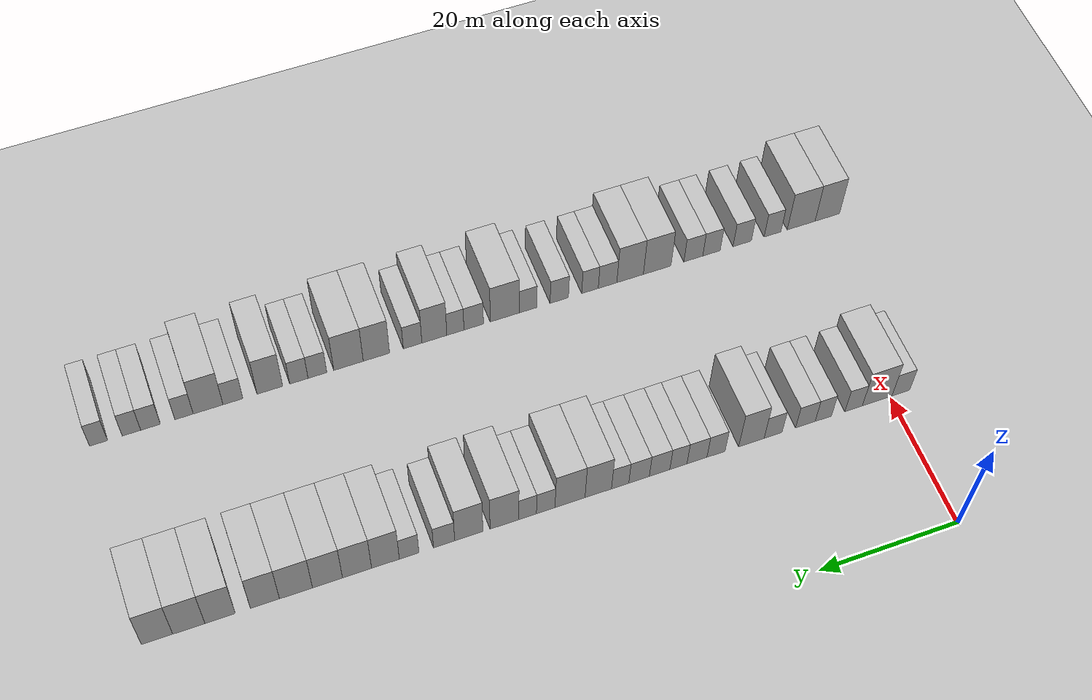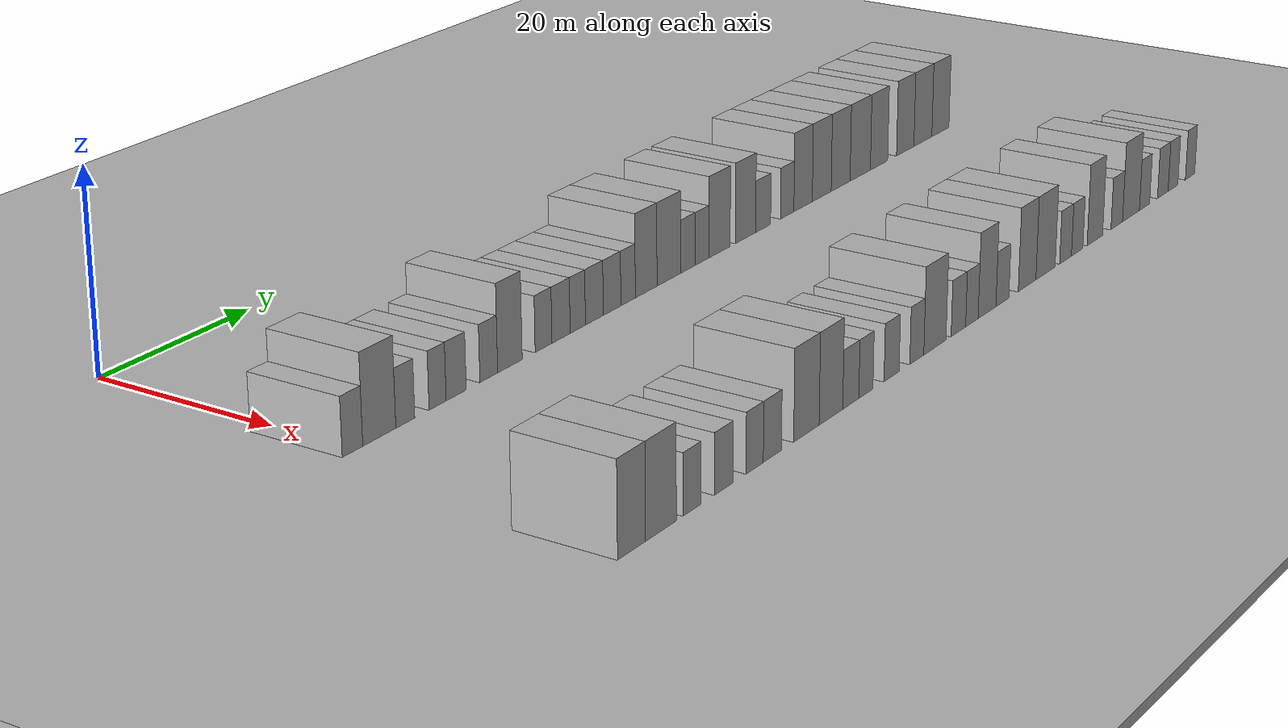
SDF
<sdf version="1.6">
 <world name="default">
  <include><name>ground_plane_1</name><uri>model://HANNAS_ground_plane</uri></include>
  <include>
   <name>ground_plane_2</name>
   <uri>model://HANNAS_ground_plane</uri>
   <pose>100 0 0  0 0 0</pose>
  </include>
  <model name="building_58">
   <static>1</static>
   <pose>25.0000 -1.4398 0 0.000000 0.000000 0.000000</pose>
   <link name="link">
    <pose>0 0 3.00 0 0 0</pose>
    <collision name="collision"><geometry><box><size>10.0000 2.7014 6.0000</size></box></geometry></collision>
    <visual name="visual">
     <cast_shadows>0</cast_shadows>
     <geometry><box><size>10.0000 2.7014 6.0000</size></box></geometry>
     <material>
      <script>
       <uri>model://HANNAS_wall/materials/scripts</uri>
       <uri>model://HANNAS_wall/materials/textures</uri>
       <name>vrc/HANNAS_wall</name>
      </script>
     </material>
    </visual>
   </link>
  </model>
  <model name="building_59">
   <static>1</static>
   <pose>25.0000 2.1377 0 0.000000 0.000000 0.000000</pose>
   <link name="link">
    <pose>0 0 4.50 0 0 0</pose>
    <collision name="collision"><geometry><box><size>10.0000 4.4536 9.0000</size></box></geometry></collision>
    <visual name="visual">
     <cast_shadows>0</cast_shadows>
     <geometry><box><size>10.0000 4.4536 9.0000</size></box></geometry>
     <material>
      <script>
       <uri>model://HANNAS_wall/materials/scripts</uri>
       <uri>model://HANNAS_wall/materials/textures</uri>
       <name>vrc/HANNAS_wall</name>
      </script>
     </material>
    </visual>
   </link>
  </model>
  <model name="building_60">
   <static>1</static>
   <pose>25.0000 5.6719 0 0.000000 0.000000 0.000000</pose>
   <link name="link">
    <pose>0 0 3.00 0 0 0</pose>
    <collision name="collision"><geometry><box><size>10.0000 2.6147 6.0000</size></box></geometry></collision>
    <visual name="visual">
     <cast_shadows>0</cast_shadows>
     <geometry><box><size>10.0000 2.6147 6.0000</size></box></geometry>
     <material>
      <script>
       <uri>model://HANNAS_wall/materials/scripts</uri>
       <uri>model://HANNAS_wall/materials/textures</uri>
       <name>vrc/HANNAS_wall</name>
      </script>
     </material>
    </visual>
   </link>
  </model>
  <model name="building_61">
   <static>1</static>
   <pose>25.0000 10.1976 0 0.000000 0.000000 0.000000</pose>
   <link name="link">
    <pose>0 0 3.00 0 0 0</pose>
    <collision name="collision"><geometry><box><size>10.0000 2.4369 6.0000</size></box></geometry></collision>
    <visual name="visual">
     <cast_shadows>0</cast_shadows>
     <geometry><box><size>10.0000 2.4369 6.0000</size></box></geometry>
     <material>
      <script>
       <uri>model://HANNAS_wall/materials/scripts</uri>
       <uri>model://HANNAS_wall/materials/textures</uri>
       <name>vrc/HANNAS_wall</name>
      </script>
     </material>
    </visual>
   </link>
  </model>
  <model name="building_62">
   <static>1</static>
   <pose>25.0000 12.8672 0 0.000000 0.000000 0.000000</pose>
   <link name="link">
    <pose>0 0 3.00 0 0 0</pose>
    <collision name="collision"><geometry><box><size>10.0000 2.9022 6.0000</size></box></geometry></collision>
    <visual name="visual">
     <cast_shadows>0</cast_shadows>
     <geometry><box><size>10.0000 2.9022 6.0000</size></box></geometry>
     <material>
      <script>
       <uri>model://HANNAS_wall/materials/scripts</uri>
       <uri>model://HANNAS_wall/materials/textures</uri>
       <name>vrc/HANNAS_wall</name>
      </script>
     </material>
    </visual>
   </link>
  </model>
  <model name="building_63">
   <static>1</static>
   <pose>25.0000 17.6423 0 0.000000 0.000000 0.000000</pose>
   <link name="link">
    <pose>0 0 3.00 0 0 0</pose>
    <collision name="collision"><geometry><box><size>10.0000 2.6480 6.0000</size></box></geometry></collision>
    <visual name="visual">
     <cast_shadows>0</cast_shadows>
     <geometry><box><size>10.0000 2.6480 6.0000</size></box></geometry>
     <material>
      <script>
       <uri>model://HANNAS_wall/materials/scripts</uri>
       <uri>model://HANNAS_wall/materials/textures</uri>
       <name>vrc/HANNAS_wall</name>
      </script>
     </material>
    </visual>
   </link>
  </model>
  <model name="building_64">
   <static>1</static>
   <pose>25.0000 20.8289 0 0.000000 0.000000 0.000000</pose>
   <link name="link">
    <pose>0 0 4.50 0 0 0</pose>
    <collision name="collision"><geometry><box><size>10.0000 3.7254 9.0000</size></box></geometry></collision>
    <visual name="visual">
     <cast_shadows>0</cast_shadows>
     <geometry><box><size>10.0000 3.7254 9.0000</size></box></geometry>
     <material>
      <script>
       <uri>model://HANNAS_wall/materials/scripts</uri>
       <uri>model://HANNAS_wall/materials/textures</uri>
       <name>vrc/HANNAS_wall</name>
      </script>
     </material>
    </visual>
   </link>
  </model>
  <model name="building_65">
   <static>1</static>
   <pose>25.0000 26.0097 0 0.000000 0.000000 0.000000</pose>
   <link name="link">
    <pose>0 0 3.00 0 0 0</pose>
    <collision name="collision"><geometry><box><size>10.0000 2.6362 6.0000</size></box></geometry></collision>
    <visual name="visual">
     <cast_shadows>0</cast_shadows>
     <geometry><box><size>10.0000 2.6362 6.0000</size></box></geometry>
     <material>
      <script>
       <uri>model://HANNAS_wall/materials/scripts</uri>
       <uri>model://HANNAS_wall/materials/textures</uri>
       <name>vrc/HANNAS_wall</name>
      </script>
     </material>
    </visual>
   </link>
  </model>
  <model name="building_66">
   <static>1</static>
   <pose>25.0000 28.7785 0 0.000000 0.000000 0.000000</pose>
   <link name="link">
    <pose>0 0 3.00 0 0 0</pose>
    <collision name="collision"><geometry><box><size>10.0000 2.9012 6.0000</size></box></geometry></collision>
    <visual name="visual">
     <cast_shadows>0</cast_shadows>
     <geometry><box><size>10.0000 2.9012 6.0000</size></box></geometry>
     <material>
      <script>
       <uri>model://HANNAS_wall/materials/scripts</uri>
       <uri>model://HANNAS_wall/materials/textures</uri>
       <name>vrc/HANNAS_wall</name>
      </script>
     </material>
    </visual>
   </link>
  </model>
  <model name="building_67">
   <static>1</static>
   <pose>25.0000 31.4660 0 0.000000 0.000000 0.000000</pose>
   <link name="link">
    <pose>0 0 3.00 0 0 0</pose>
    <collision name="collision"><geometry><box><size>10.0000 2.4739 6.0000</size></box></geometry></collision>
    <visual name="visual">
     <cast_shadows>0</cast_shadows>
     <geometry><box><size>10.0000 2.4739 6.0000</size></box></geometry>
     <material>
      <script>
       <uri>model://HANNAS_wall/materials/scripts</uri>
       <uri>model://HANNAS_wall/materials/textures</uri>
       <name>vrc/HANNAS_wall</name>
      </script>
     </material>
    </visual>
   </link>
  </model>
  <model name="building_68">
   <static>1</static>
   <pose>25.0000 34.1772 0 0.000000 0.000000 0.000000</pose>
   <link name="link">
    <pose>0 0 3.00 0 0 0</pose>
    <collision name="collision"><geometry><box><size>10.0000 2.9485 6.0000</size></box></geometry></collision>
    <visual name="visual">
     <cast_shadows>0</cast_shadows>
     <geometry><box><size>10.0000 2.9485 6.0000</size></box></geometry>
     <material>
      <script>
       <uri>model://HANNAS_wall/materials/scripts</uri>
       <uri>model://HANNAS_wall/materials/textures</uri>
       <name>vrc/HANNAS_wall</name>
      </script>
     </material>
    </visual>
   </link>
  </model>
  <model name="building_69">
   <static>1</static>
   <pose>25.0000 37.1242 0 0.000000 0.000000 0.000000</pose>
   <link name="link">
    <pose>0 0 3.00 0 0 0</pose>
    <collision name="collision"><geometry><box><size>10.0000 2.9454 6.0000</size></box></geometry></collision>
    <visual name="visual">
     <cast_shadows>0</cast_shadows>
     <geometry><box><size>10.0000 2.9454 6.0000</size></box></geometry>
     <material>
      <script>
       <uri>model://HANNAS_wall/materials/scripts</uri>
       <uri>model://HANNAS_wall/materials/textures</uri>
       <name>vrc/HANNAS_wall</name>
      </script>
     </material>
    </visual>
   </link>
  </model>
  <model name="building_70">
   <static>1</static>
   <pose>25.0000 39.8314 0 0.000000 0.000000 0.000000</pose>
   <link name="link">
    <pose>0 0 3.00 0 0 0</pose>
    <collision name="collision"><geometry><box><size>10.0000 2.4690 6.0000</size></box></geometry></collision>
    <visual name="visual">
     <cast_shadows>0</cast_shadows>
     <geometry><box><size>10.0000 2.4690 6.0000</size></box></geometry>
     <material>
      <script>
       <uri>model://HANNAS_wall/materials/scripts</uri>
       <uri>model://HANNAS_wall/materials/textures</uri>
       <name>vrc/HANNAS_wall</name>
      </script>
     </material>
    </visual>
   </link>
  </model>
  <model name="building_71">
   <static>1</static>
   <pose>25.0000 42.9472 0 0.000000 0.000000 0.000000</pose>
   <link name="link">
    <pose>0 0 4.50 0 0 0</pose>
    <collision name="collision"><geometry><box><size>10.0000 3.7625 9.0000</size></box></geometry></collision>
    <visual name="visual">
     <cast_shadows>0</cast_shadows>
     <geometry><box><size>10.0000 3.7625 9.0000</size></box></geometry>
     <material>
      <script>
       <uri>model://HANNAS_wall/materials/scripts</uri>
       <uri>model://HANNAS_wall/materials/textures</uri>
       <name>vrc/HANNAS_wall</name>
      </script>
     </material>
    </visual>
   </link>
  </model>
  <model name="building_72">
   <static>1</static>
   <pose>25.0000 46.9512 0 0.000000 0.000000 0.000000</pose>
   <link name="link">
    <pose>0 0 4.50 0 0 0</pose>
    <collision name="collision"><geometry><box><size>10.0000 4.2455 9.0000</size></box></geometry></collision>
    <visual name="visual">
     <cast_shadows>0</cast_shadows>
     <geometry><box><size>10.0000 4.2455 9.0000</size></box></geometry>
     <material>
      <script>
       <uri>model://HANNAS_wall/materials/scripts</uri>
       <uri>model://HANNAS_wall/materials/textures</uri>
       <name>vrc/HANNAS_wall</name>
      </script>
     </material>
    </visual>
   </link>
  </model>
  <model name="building_73">
   <static>1</static>
   <pose>25.0000 50.3773 0 0.000000 0.000000 0.000000</pose>
   <link name="link">
    <pose>0 0 3.00 0 0 0</pose>
    <collision name="collision"><geometry><box><size>10.0000 2.6068 6.0000</size></box></geometry></collision>
    <visual name="visual">
     <cast_shadows>0</cast_shadows>
     <geometry><box><size>10.0000 2.6068 6.0000</size></box></geometry>
     <material>
      <script>
       <uri>model://HANNAS_wall/materials/scripts</uri>
       <uri>model://HANNAS_wall/materials/textures</uri>
       <name>vrc/HANNAS_wall</name>
      </script>
     </material>
    </visual>
   </link>
  </model>
  <model name="building_74">
   <static>1</static>
   <pose>25.0000 52.9220 0 0.000000 0.000000 0.000000</pose>
   <link name="link">
    <pose>0 0 3.00 0 0 0</pose>
    <collision name="collision"><geometry><box><size>10.0000 2.4825 6.0000</size></box></geometry></collision>
    <visual name="visual">
     <cast_shadows>0</cast_shadows>
     <geometry><box><size>10.0000 2.4825 6.0000</size></box></geometry>
     <material>
      <script>
       <uri>model://HANNAS_wall/materials/scripts</uri>
       <uri>model://HANNAS_wall/materials/textures</uri>
       <name>vrc/HANNAS_wall</name>
      </script>
     </material>
    </visual>
   </link>
  </model>
  <model name="building_75">
   <static>1</static>
   <pose>25.0000 56.1605 0 0.000000 0.000000 0.000000</pose>
   <link name="link">
    <pose>0 0 4.50 0 0 0</pose>
    <collision name="collision"><geometry><box><size>10.0000 3.9944 9.0000</size></box></geometry></collision>
    <visual name="visual">
     <cast_shadows>0</cast_shadows>
     <geometry><box><size>10.0000 3.9944 9.0000</size></box></geometry>
     <material>
      <script>
       <uri>model://HANNAS_wall/materials/scripts</uri>
       <uri>model://HANNAS_wall/materials/textures</uri>
       <name>vrc/HANNAS_wall</name>
      </script>
     </material>
    </visual>
   </link>
  </model>
  <model name="building_76">
   <static>1</static>
   <pose>25.0000 61.1073 0 0.000000 0.000000 0.000000</pose>
   <link name="link">
    <pose>0 0 4.50 0 0 0</pose>
    <collision name="collision"><geometry><box><size>10.0000 3.8993 9.0000</size></box></geometry></collision>
    <visual name="visual">
     <cast_shadows>0</cast_shadows>
     <geometry><box><size>10.0000 3.8993 9.0000</size></box></geometry>
     <material>
      <script>
       <uri>model://HANNAS_wall/materials/scripts</uri>
       <uri>model://HANNAS_wall/materials/textures</uri>
       <name>vrc/HANNAS_wall</name>
      </script>
     </material>
    </visual>
   </link>
  </model>
  <model name="building_77">
   <static>1</static>
   <pose>25.0000 64.5142 0 0.000000 0.000000 0.000000</pose>
   <link name="link">
    <pose>0 0 3.00 0 0 0</pose>
    <collision name="collision"><geometry><box><size>10.0000 2.9145 6.0000</size></box></geometry></collision>
    <visual name="visual">
     <cast_shadows>0</cast_shadows>
     <geometry><box><size>10.0000 2.9145 6.0000</size></box></geometry>
     <material>
      <script>
       <uri>model://HANNAS_wall/materials/scripts</uri>
       <uri>model://HANNAS_wall/materials/textures</uri>
       <name>vrc/HANNAS_wall</name>
      </script>
     </material>
    </visual>
   </link>
  </model>
  <model name="building_78">
   <static>1</static>
   <pose>25.0000 69.3049 0 0.000000 0.000000 0.000000</pose>
   <link name="link">
    <pose>0 0 3.00 0 0 0</pose>
    <collision name="collision"><geometry><box><size>10.0000 2.6668 6.0000</size></box></geometry></collision>
    <visual name="visual">
     <cast_shadows>0</cast_shadows>
     <geometry><box><size>10.0000 2.6668 6.0000</size></box></geometry>
     <material>
      <script>
       <uri>model://HANNAS_wall/materials/scripts</uri>
       <uri>model://HANNAS_wall/materials/textures</uri>
       <name>vrc/HANNAS_wall</name>
      </script>
     </material>
    </visual>
   </link>
  </model>
  <model name="building_79">
   <static>1</static>
   <pose>25.0000 72.5242 0 0.000000 0.000000 0.000000</pose>
   <link name="link">
    <pose>0 0 4.50 0 0 0</pose>
    <collision name="collision"><geometry><box><size>10.0000 3.7717 9.0000</size></box></geometry></collision>
    <visual name="visual">
     <cast_shadows>0</cast_shadows>
     <geometry><box><size>10.0000 3.7717 9.0000</size></box></geometry>
     <material>
      <script>
       <uri>model://HANNAS_wall/materials/scripts</uri>
       <uri>model://HANNAS_wall/materials/textures</uri>
       <name>vrc/HANNAS_wall</name>
      </script>
     </material>
    </visual>
   </link>
  </model>
  <model name="building_80">
   <static>1</static>
   <pose>25.0000 76.3780 0 0.000000 0.000000 0.000000</pose>
   <link name="link">
    <pose>0 0 4.50 0 0 0</pose>
    <collision name="collision"><geometry><box><size>10.0000 3.9360 9.0000</size></box></geometry></collision>
    <visual name="visual">
     <cast_shadows>0</cast_shadows>
     <geometry><box><size>10.0000 3.9360 9.0000</size></box></geometry>
     <material>
      <script>
       <uri>model://HANNAS_wall/materials/scripts</uri>
       <uri>model://HANNAS_wall/materials/textures</uri>
       <name>vrc/HANNAS_wall</name>
      </script>
     </material>
    </visual>
   </link>
  </model>
  <model name="building_81">
   <static>1</static>
   <pose>25.0000 80.3650 0 0.000000 0.000000 0.000000</pose>
   <link name="link">
    <pose>0 0 4.50 0 0 0</pose>
    <collision name="collision"><geometry><box><size>10.0000 4.0379 9.0000</size></box></geometry></collision>
    <visual name="visual">
     <cast_shadows>0</cast_shadows>
     <geometry><box><size>10.0000 4.0379 9.0000</size></box></geometry>
     <material>
      <script>
       <uri>model://HANNAS_wall/materials/scripts</uri>
       <uri>model://HANNAS_wall/materials/textures</uri>
       <name>vrc/HANNAS_wall</name>
      </script>
     </material>
    </visual>
   </link>
  </model>
  <model name="building_82">
   <static>1</static>
   <pose>25.0000 84.5962 0 0.000000 0.000000 0.000000</pose>
   <link name="link">
    <pose>0 0 4.50 0 0 0</pose>
    <collision name="collision"><geometry><box><size>10.0000 4.4244 9.0000</size></box></geometry></collision>
    <visual name="visual">
     <cast_shadows>0</cast_shadows>
     <geometry><box><size>10.0000 4.4244 9.0000</size></box></geometry>
     <material>
      <script>
       <uri>model://HANNAS_wall/materials/scripts</uri>
       <uri>model://HANNAS_wall/materials/textures</uri>
       <name>vrc/HANNAS_wall</name>
      </script>
     </material>
    </visual>
   </link>
  </model>
  <model name="building_83">
   <static>1</static>
   <pose>25.0000 88.7380 0 0.000000 0.000000 0.000000</pose>
   <link name="link">
    <pose>0 0 4.50 0 0 0</pose>
    <collision name="collision"><geometry><box><size>10.0000 3.8592 9.0000</size></box></geometry></collision>
    <visual name="visual">
     <cast_shadows>0</cast_shadows>
     <geometry><box><size>10.0000 3.8592 9.0000</size></box></geometry>
     <material>
      <script>
       <uri>model://HANNAS_wall/materials/scripts</uri>
       <uri>model://HANNAS_wall/materials/textures</uri>
       <name>vrc/HANNAS_wall</name>
      </script>
     </material>
    </visual>
   </link>
  </model>
  <model name="building_84">
   <static>1</static>
   <pose>25.0000 94.6666 0 0.000000 0.000000 0.000000</pose>
   <link name="link">
    <pose>0 0 4.50 0 0 0</pose>
    <collision name="collision"><geometry><box><size>10.0000 3.9980 9.0000</size></box></geometry></collision>
    <visual name="visual">
     <cast_shadows>0</cast_shadows>
     <geometry><box><size>10.0000 3.9980 9.0000</size></box></geometry>
     <material>
      <script>
       <uri>model://HANNAS_wall/materials/scripts</uri>
       <uri>model://HANNAS_wall/materials/textures</uri>
       <name>vrc/HANNAS_wall</name>
      </script>
     </material>
    </visual>
   </link>
  </model>
  <model name="building_85">
   <static>1</static>
   <pose>25.0000 98.7705 0 0.000000 0.000000 0.000000</pose>
   <link name="link">
    <pose>0 0 4.50 0 0 0</pose>
    <collision name="collision"><geometry><box><size>10.0000 4.2097 9.0000</size></box></geometry></collision>
    <visual name="visual">
     <cast_shadows>0</cast_shadows>
     <geometry><box><size>10.0000 4.2097 9.0000</size></box></geometry>
     <material>
      <script>
       <uri>model://HANNAS_wall/materials/scripts</uri>
       <uri>model://HANNAS_wall/materials/textures</uri>
       <name>vrc/HANNAS_wall</name>
      </script>
     </material>
    </visual>
   </link>
  </model>
  <model name="building_86">
   <static>1</static>
   <pose>25.0000 102.9150 0 0.000000 0.000000 0.000000</pose>
   <link name="link">
    <pose>0 0 4.50 0 0 0</pose>
    <collision name="collision"><geometry><box><size>10.0000 4.0794 9.0000</size></box></geometry></collision>
    <visual name="visual">
     <cast_shadows>0</cast_shadows>
     <geometry><box><size>10.0000 4.0794 9.0000</size></box></geometry>
     <material>
      <script>
       <uri>model://HANNAS_wall/materials/scripts</uri>
       <uri>model://HANNAS_wall/materials/textures</uri>
       <name>vrc/HANNAS_wall</name>
      </script>
     </material>
    </visual>
   </link>
  </model>
  <model name="building_170">
   <static>1</static>
   <pose>55.0000 -4.5152 0 0.000000 0.000000 0.000000</pose>
   <link name="link">
    <pose>0 0 4.50 0 0 0</pose>
    <collision name="collision"><geometry><box><size>10.0000 3.8915 9.0000</size></box></geometry></collision>
    <visual name="visual">
     <cast_shadows>0</cast_shadows>
     <geometry><box><size>10.0000 3.8915 9.0000</size></box></geometry>
     <material>
      <script>
       <uri>model://HANNAS_wall/materials/scripts</uri>
       <uri>model://HANNAS_wall/materials/textures</uri>
       <name>vrc/HANNAS_wall</name>
      </script>
     </material>
    </visual>
   </link>
  </model>
  <model name="building_171">
   <static>1</static>
   <pose>55.0000 -0.3656 0 0.000000 0.000000 0.000000</pose>
   <link name="link">
    <pose>0 0 4.50 0 0 0</pose>
    <collision name="collision"><geometry><box><size>10.0000 4.4075 9.0000</size></box></geometry></collision>
    <visual name="visual">
     <cast_shadows>0</cast_shadows>
     <geometry><box><size>10.0000 4.4075 9.0000</size></box></geometry>
     <material>
      <script>
       <uri>model://HANNAS_wall/materials/scripts</uri>
       <uri>model://HANNAS_wall/materials/textures</uri>
       <name>vrc/HANNAS_wall</name>
      </script>
     </material>
    </visual>
   </link>
  </model>
  <model name="building_172">
   <static>1</static>
   <pose>55.0000 4.1590 0 0.000000 0.000000 0.000000</pose>
   <link name="link">
    <pose>0 0 3.00 0 0 0</pose>
    <collision name="collision"><geometry><box><size>10.0000 2.6419 6.0000</size></box></geometry></collision>
    <visual name="visual">
     <cast_shadows>0</cast_shadows>
     <geometry><box><size>10.0000 2.6419 6.0000</size></box></geometry>
     <material>
      <script>
       <uri>model://HANNAS_wall/materials/scripts</uri>
       <uri>model://HANNAS_wall/materials/textures</uri>
       <name>vrc/HANNAS_wall</name>
      </script>
     </material>
    </visual>
   </link>
  </model>
  <model name="building_173">
   <static>1</static>
   <pose>55.0000 8.9166 0 0.000000 0.000000 0.000000</pose>
   <link name="link">
    <pose>0 0 3.00 0 0 0</pose>
    <collision name="collision"><geometry><box><size>10.0000 2.8733 6.0000</size></box></geometry></collision>
    <visual name="visual">
     <cast_shadows>0</cast_shadows>
     <geometry><box><size>10.0000 2.8733 6.0000</size></box></geometry>
     <material>
      <script>
       <uri>model://HANNAS_wall/materials/scripts</uri>
       <uri>model://HANNAS_wall/materials/textures</uri>
       <name>vrc/HANNAS_wall</name>
      </script>
     </material>
    </visual>
   </link>
  </model>
  <model name="building_174">
   <static>1</static>
   <pose>55.0000 13.7115 0 0.000000 0.000000 0.000000</pose>
   <link name="link">
    <pose>0 0 3.00 0 0 0</pose>
    <collision name="collision"><geometry><box><size>10.0000 2.7165 6.0000</size></box></geometry></collision>
    <visual name="visual">
     <cast_shadows>0</cast_shadows>
     <geometry><box><size>10.0000 2.7165 6.0000</size></box></geometry>
     <material>
      <script>
       <uri>model://HANNAS_wall/materials/scripts</uri>
       <uri>model://HANNAS_wall/materials/textures</uri>
       <name>vrc/HANNAS_wall</name>
      </script>
     </material>
    </visual>
   </link>
  </model>
  <model name="building_175">
   <static>1</static>
   <pose>55.0000 16.5272 0 0.000000 0.000000 0.000000</pose>
   <link name="link">
    <pose>0 0 3.00 0 0 0</pose>
    <collision name="collision"><geometry><box><size>10.0000 2.9148 6.0000</size></box></geometry></collision>
    <visual name="visual">
     <cast_shadows>0</cast_shadows>
     <geometry><box><size>10.0000 2.9148 6.0000</size></box></geometry>
     <material>
      <script>
       <uri>model://HANNAS_wall/materials/scripts</uri>
       <uri>model://HANNAS_wall/materials/textures</uri>
       <name>vrc/HANNAS_wall</name>
      </script>
     </material>
    </visual>
   </link>
  </model>
  <model name="building_176">
   <static>1</static>
   <pose>55.0000 22.1046 0 0.000000 0.000000 0.000000</pose>
   <link name="link">
    <pose>0 0 4.50 0 0 0</pose>
    <collision name="collision"><geometry><box><size>10.0000 4.2401 9.0000</size></box></geometry></collision>
    <visual name="visual">
     <cast_shadows>0</cast_shadows>
     <geometry><box><size>10.0000 4.2401 9.0000</size></box></geometry>
     <material>
      <script>
       <uri>model://HANNAS_wall/materials/scripts</uri>
       <uri>model://HANNAS_wall/materials/textures</uri>
       <name>vrc/HANNAS_wall</name>
      </script>
     </material>
    </visual>
   </link>
  </model>
  <model name="building_177">
   <static>1</static>
   <pose>55.0000 26.2525 0 0.000000 0.000000 0.000000</pose>
   <link name="link">
    <pose>0 0 4.50 0 0 0</pose>
    <collision name="collision"><geometry><box><size>10.0000 4.0556 9.0000</size></box></geometry></collision>
    <visual name="visual">
     <cast_shadows>0</cast_shadows>
     <geometry><box><size>10.0000 4.0556 9.0000</size></box></geometry>
     <material>
      <script>
       <uri>model://HANNAS_wall/materials/scripts</uri>
       <uri>model://HANNAS_wall/materials/textures</uri>
       <name>vrc/HANNAS_wall</name>
      </script>
     </material>
    </visual>
   </link>
  </model>
  <model name="building_178">
   <static>1</static>
   <pose>55.0000 29.6916 0 0.000000 0.000000 0.000000</pose>
   <link name="link">
    <pose>0 0 3.00 0 0 0</pose>
    <collision name="collision"><geometry><box><size>10.0000 2.8225 6.0000</size></box></geometry></collision>
    <visual name="visual">
     <cast_shadows>0</cast_shadows>
     <geometry><box><size>10.0000 2.8225 6.0000</size></box></geometry>
     <material>
      <script>
       <uri>model://HANNAS_wall/materials/scripts</uri>
       <uri>model://HANNAS_wall/materials/textures</uri>
       <name>vrc/HANNAS_wall</name>
      </script>
     </material>
    </visual>
   </link>
  </model>
  <model name="building_179">
   <static>1</static>
   <pose>55.0000 32.3605 0 0.000000 0.000000 0.000000</pose>
   <link name="link">
    <pose>0 0 3.00 0 0 0</pose>
    <collision name="collision"><geometry><box><size>10.0000 2.5154 6.0000</size></box></geometry></collision>
    <visual name="visual">
     <cast_shadows>0</cast_shadows>
     <geometry><box><size>10.0000 2.5154 6.0000</size></box></geometry>
     <material>
      <script>
       <uri>model://HANNAS_wall/materials/scripts</uri>
       <uri>model://HANNAS_wall/materials/textures</uri>
       <name>vrc/HANNAS_wall</name>
      </script>
     </material>
    </visual>
   </link>
  </model>
  <model name="building_180">
   <static>1</static>
   <pose>55.0000 37.0022 0 0.000000 0.000000 0.000000</pose>
   <link name="link">
    <pose>0 0 3.00 0 0 0</pose>
    <collision name="collision"><geometry><box><size>10.0000 2.7679 6.0000</size></box></geometry></collision>
    <visual name="visual">
     <cast_shadows>0</cast_shadows>
     <geometry><box><size>10.0000 2.7679 6.0000</size></box></geometry>
     <material>
      <script>
       <uri>model://HANNAS_wall/materials/scripts</uri>
       <uri>model://HANNAS_wall/materials/textures</uri>
       <name>vrc/HANNAS_wall</name>
      </script>
     </material>
    </visual>
   </link>
  </model>
  <model name="building_181">
   <static>1</static>
   <pose>55.0000 41.7092 0 0.000000 0.000000 0.000000</pose>
   <link name="link">
    <pose>0 0 3.00 0 0 0</pose>
    <collision name="collision"><geometry><box><size>10.0000 2.6462 6.0000</size></box></geometry></collision>
    <visual name="visual">
     <cast_shadows>0</cast_shadows>
     <geometry><box><size>10.0000 2.6462 6.0000</size></box></geometry>
     <material>
      <script>
       <uri>model://HANNAS_wall/materials/scripts</uri>
       <uri>model://HANNAS_wall/materials/textures</uri>
       <name>vrc/HANNAS_wall</name>
      </script>
     </material>
    </visual>
   </link>
  </model>
  <model name="building_182">
   <static>1</static>
   <pose>55.0000 45.1811 0 0.000000 0.000000 0.000000</pose>
   <link name="link">
    <pose>0 0 4.50 0 0 0</pose>
    <collision name="collision"><geometry><box><size>10.0000 4.2976 9.0000</size></box></geometry></collision>
    <visual name="visual">
     <cast_shadows>0</cast_shadows>
     <geometry><box><size>10.0000 4.2976 9.0000</size></box></geometry>
     <material>
      <script>
       <uri>model://HANNAS_wall/materials/scripts</uri>
       <uri>model://HANNAS_wall/materials/textures</uri>
       <name>vrc/HANNAS_wall</name>
      </script>
     </material>
    </visual>
   </link>
  </model>
  <model name="building_183">
   <static>1</static>
   <pose>55.0000 49.7704 0 0.000000 0.000000 0.000000</pose>
   <link name="link">
    <pose>0 0 3.00 0 0 0</pose>
    <collision name="collision"><geometry><box><size>10.0000 2.8810 6.0000</size></box></geometry></collision>
    <visual name="visual">
     <cast_shadows>0</cast_shadows>
     <geometry><box><size>10.0000 2.8810 6.0000</size></box></geometry>
     <material>
      <script>
       <uri>model://HANNAS_wall/materials/scripts</uri>
       <uri>model://HANNAS_wall/materials/textures</uri>
       <name>vrc/HANNAS_wall</name>
      </script>
     </material>
    </visual>
   </link>
  </model>
  <model name="building_184">
   <static>1</static>
   <pose>55.0000 52.4722 0 0.000000 0.000000 0.000000</pose>
   <link name="link">
    <pose>0 0 3.00 0 0 0</pose>
    <collision name="collision"><geometry><box><size>10.0000 2.5226 6.0000</size></box></geometry></collision>
    <visual name="visual">
     <cast_shadows>0</cast_shadows>
     <geometry><box><size>10.0000 2.5226 6.0000</size></box></geometry>
     <material>
      <script>
       <uri>model://HANNAS_wall/materials/scripts</uri>
       <uri>model://HANNAS_wall/materials/textures</uri>
       <name>vrc/HANNAS_wall</name>
      </script>
     </material>
    </visual>
   </link>
  </model>
  <model name="building_185">
   <static>1</static>
   <pose>55.0000 55.5651 0 0.000000 0.000000 0.000000</pose>
   <link name="link">
    <pose>0 0 4.50 0 0 0</pose>
    <collision name="collision"><geometry><box><size>10.0000 3.6631 9.0000</size></box></geometry></collision>
    <visual name="visual">
     <cast_shadows>0</cast_shadows>
     <geometry><box><size>10.0000 3.6631 9.0000</size></box></geometry>
     <material>
      <script>
       <uri>model://HANNAS_wall/materials/scripts</uri>
       <uri>model://HANNAS_wall/materials/textures</uri>
       <name>vrc/HANNAS_wall</name>
      </script>
     </material>
    </visual>
   </link>
  </model>
  <model name="building_186">
   <static>1</static>
   <pose>55.0000 58.7518 0 0.000000 0.000000 0.000000</pose>
   <link name="link">
    <pose>0 0 3.00 0 0 0</pose>
    <collision name="collision"><geometry><box><size>10.0000 2.7103 6.0000</size></box></geometry></collision>
    <visual name="visual">
     <cast_shadows>0</cast_shadows>
     <geometry><box><size>10.0000 2.7103 6.0000</size></box></geometry>
     <material>
      <script>
       <uri>model://HANNAS_wall/materials/scripts</uri>
       <uri>model://HANNAS_wall/materials/textures</uri>
       <name>vrc/HANNAS_wall</name>
      </script>
     </material>
    </visual>
   </link>
  </model>
  <model name="building_187">
   <static>1</static>
   <pose>55.0000 64.0148 0 0.000000 0.000000 0.000000</pose>
   <link name="link">
    <pose>0 0 4.50 0 0 0</pose>
    <collision name="collision"><geometry><box><size>10.0000 3.8157 9.0000</size></box></geometry></collision>
    <visual name="visual">
     <cast_shadows>0</cast_shadows>
     <geometry><box><size>10.0000 3.8157 9.0000</size></box></geometry>
     <material>
      <script>
       <uri>model://HANNAS_wall/materials/scripts</uri>
       <uri>model://HANNAS_wall/materials/textures</uri>
       <name>vrc/HANNAS_wall</name>
      </script>
     </material>
    </visual>
   </link>
  </model>
  <model name="building_188">
   <static>1</static>
   <pose>55.0000 68.0507 0 0.000000 0.000000 0.000000</pose>
   <link name="link">
    <pose>0 0 4.50 0 0 0</pose>
    <collision name="collision"><geometry><box><size>10.0000 4.2560 9.0000</size></box></geometry></collision>
    <visual name="visual">
     <cast_shadows>0</cast_shadows>
     <geometry><box><size>10.0000 4.2560 9.0000</size></box></geometry>
     <material>
      <script>
       <uri>model://HANNAS_wall/materials/scripts</uri>
       <uri>model://HANNAS_wall/materials/textures</uri>
       <name>vrc/HANNAS_wall</name>
      </script>
     </material>
    </visual>
   </link>
  </model>
  <model name="building_189">
   <static>1</static>
   <pose>55.0000 72.5235 0 0.000000 0.000000 0.000000</pose>
   <link name="link">
    <pose>0 0 3.00 0 0 0</pose>
    <collision name="collision"><geometry><box><size>10.0000 2.6896 6.0000</size></box></geometry></collision>
    <visual name="visual">
     <cast_shadows>0</cast_shadows>
     <geometry><box><size>10.0000 2.6896 6.0000</size></box></geometry>
     <material>
      <script>
       <uri>model://HANNAS_wall/materials/scripts</uri>
       <uri>model://HANNAS_wall/materials/textures</uri>
       <name>vrc/HANNAS_wall</name>
      </script>
     </material>
    </visual>
   </link>
  </model>
  <model name="building_190">
   <static>1</static>
   <pose>55.0000 75.1782 0 0.000000 0.000000 0.000000</pose>
   <link name="link">
    <pose>0 0 3.00 0 0 0</pose>
    <collision name="collision"><geometry><box><size>10.0000 2.6197 6.0000</size></box></geometry></collision>
    <visual name="visual">
     <cast_shadows>0</cast_shadows>
     <geometry><box><size>10.0000 2.6197 6.0000</size></box></geometry>
     <material>
      <script>
       <uri>model://HANNAS_wall/materials/scripts</uri>
       <uri>model://HANNAS_wall/materials/textures</uri>
       <name>vrc/HANNAS_wall</name>
      </script>
     </material>
    </visual>
   </link>
  </model>
  <model name="building_191">
   <static>1</static>
   <pose>55.0000 79.3121 0 0.000000 0.000000 0.000000</pose>
   <link name="link">
    <pose>0 0 4.50 0 0 0</pose>
    <collision name="collision"><geometry><box><size>10.0000 3.6480 9.0000</size></box></geometry></collision>
    <visual name="visual">
     <cast_shadows>0</cast_shadows>
     <geometry><box><size>10.0000 3.6480 9.0000</size></box></geometry>
     <material>
      <script>
       <uri>model://HANNAS_wall/materials/scripts</uri>
       <uri>model://HANNAS_wall/materials/textures</uri>
       <name>vrc/HANNAS_wall</name>
      </script>
     </material>
    </visual>
   </link>
  </model>
  <model name="building_192">
   <static>1</static>
   <pose>55.0000 84.5359 0 0.000000 0.000000 0.000000</pose>
   <link name="link">
    <pose>0 0 3.00 0 0 0</pose>
    <collision name="collision"><geometry><box><size>10.0000 2.7995 6.0000</size></box></geometry></collision>
    <visual name="visual">
     <cast_shadows>0</cast_shadows>
     <geometry><box><size>10.0000 2.7995 6.0000</size></box></geometry>
     <material>
      <script>
       <uri>model://HANNAS_wall/materials/scripts</uri>
       <uri>model://HANNAS_wall/materials/textures</uri>
       <name>vrc/HANNAS_wall</name>
      </script>
     </material>
    </visual>
   </link>
  </model>
  <model name="building_193">
   <static>1</static>
   <pose>55.0000 88.0263 0 0.000000 0.000000 0.000000</pose>
   <link name="link">
    <pose>0 0 4.50 0 0 0</pose>
    <collision name="collision"><geometry><box><size>10.0000 4.1814 9.0000</size></box></geometry></collision>
    <visual name="visual">
     <cast_shadows>0</cast_shadows>
     <geometry><box><size>10.0000 4.1814 9.0000</size></box></geometry>
     <material>
      <script>
       <uri>model://HANNAS_wall/materials/scripts</uri>
       <uri>model://HANNAS_wall/materials/textures</uri>
       <name>vrc/HANNAS_wall</name>
      </script>
     </material>
    </visual>
   </link>
  </model>
  <model name="building_194">
   <static>1</static>
   <pose>55.0000 91.4083 0 0.000000 0.000000 0.000000</pose>
   <link name="link">
    <pose>0 0 3.00 0 0 0</pose>
    <collision name="collision"><geometry><box><size>10.0000 2.5824 6.0000</size></box></geometry></collision>
    <visual name="visual">
     <cast_shadows>0</cast_shadows>
     <geometry><box><size>10.0000 2.5824 6.0000</size></box></geometry>
     <material>
      <script>
       <uri>model://HANNAS_wall/materials/scripts</uri>
       <uri>model://HANNAS_wall/materials/textures</uri>
       <name>vrc/HANNAS_wall</name>
      </script>
     </material>
    </visual>
   </link>
  </model>
  <model name="building_195">
   <static>1</static>
   <pose>55.0000 96.0650 0 0.000000 0.000000 0.000000</pose>
   <link name="link">
    <pose>0 0 3.00 0 0 0</pose>
    <collision name="collision"><geometry><box><size>10.0000 2.7311 6.0000</size></box></geometry></collision>
    <visual name="visual">
     <cast_shadows>0</cast_shadows>
     <geometry><box><size>10.0000 2.7311 6.0000</size></box></geometry>
     <material>
      <script>
       <uri>model://HANNAS_wall/materials/scripts</uri>
       <uri>model://HANNAS_wall/materials/textures</uri>
       <name>vrc/HANNAS_wall</name>
      </script>
     </material>
    </visual>
   </link>
  </model>
  <model name="building_196">
   <static>1</static>
   <pose>55.0000 98.7081 0 0.000000 0.000000 0.000000</pose>
   <link name="link">
    <pose>0 0 3.00 0 0 0</pose>
    <collision name="collision"><geometry><box><size>10.0000 2.5551 6.0000</size></box></geometry></collision>
    <visual name="visual">
     <cast_shadows>0</cast_shadows>
     <geometry><box><size>10.0000 2.5551 6.0000</size></box></geometry>
     <material>
      <script>
       <uri>model://HANNAS_wall/materials/scripts</uri>
       <uri>model://HANNAS_wall/materials/textures</uri>
       <name>vrc/HANNAS_wall</name>
      </script>
     </material>
    </visual>
   </link>
  </model>
  <model name="building_197">
   <static>1</static>
   <pose>55.0000 103.2326 0 0.000000 0.000000 0.000000</pose>
   <link name="link">
    <pose>0 0 3.00 0 0 0</pose>
    <collision name="collision"><geometry><box><size>10.0000 2.4939 6.0000</size></box></geometry></collision>
    <visual name="visual">
     <cast_shadows>0</cast_shadows>
     <geometry><box><size>10.0000 2.4939 6.0000</size></box></geometry>
     <material>
      <script>
       <uri>model://HANNAS_wall/materials/scripts</uri>
       <uri>model://HANNAS_wall/materials/textures</uri>
       <name>vrc/HANNAS_wall</name>
      </script>
     </material>
    </visual>
   </link>
  </model>
 </world>
</sdf>
